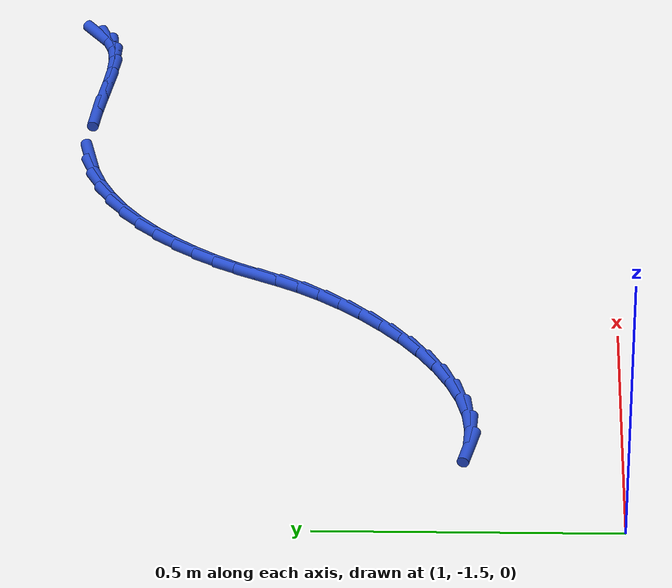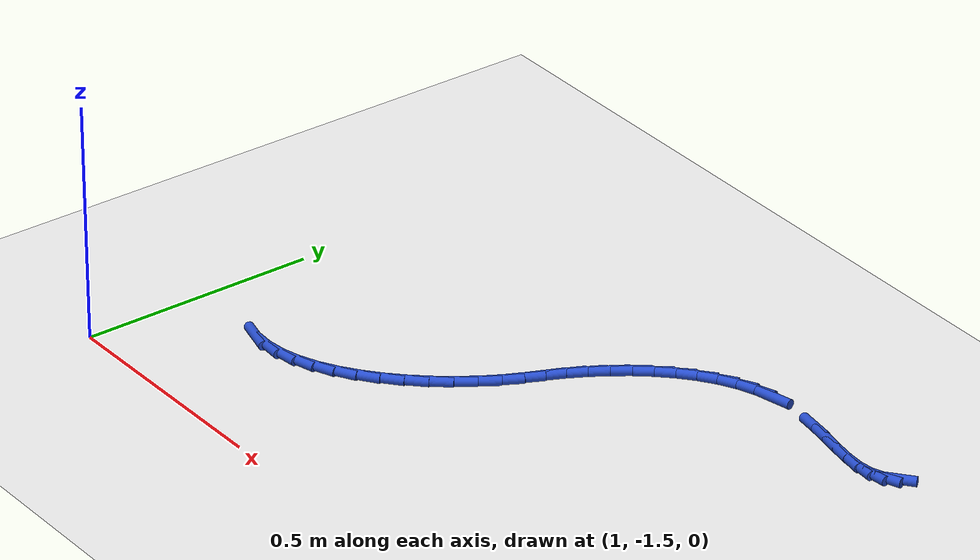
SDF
<sdf version="1.6">
 <world name="default">
  <model name="ground_plane">
   <static>1</static>
   <link name="link">
    <collision name="collision">
     <geometry><plane><normal>0 0 1</normal><size>100 100</size></plane></geometry>
     <surface><friction><ode><mu>100</mu><mu2>50</mu2></ode></friction></surface>
    </collision>
    <visual name="visual">
     <cast_shadows>0</cast_shadows>
     <geometry><plane><normal>0 0 1</normal><size>100 100</size></plane></geometry>
     <material>
      <script><uri>file://media/materials/scripts/gazebo.material</uri><name>Gazebo/WhiteGlow</name></script>
     </material>
    </visual>
   </link>
  </model>
  <model name="line">
   <link name="link_115">
    <pose>2.325679361298266 -0.6050712397060266 0.01 0 1.57 0.6688007633084342</pose>
    <collision name="collision">
     <geometry><cylinder><radius>0.01</radius><length>0.08</length></cylinder></geometry>
    </collision>
    <visual name="visual">
     <material>
      <script><name>Gazebo/Blue</name><uri>file://media/materials/scripts/gazebo.material</uri></script>
     </material>
     <geometry><cylinder><radius>0.01</radius><length>0.08</length></cylinder></geometry>
    </visual>
   </link>
   <link name="link_116">
    <pose>2.3060965718826636 -0.6205475978633173 0.01 0 1.57 0.3605797343999644</pose>
    <collision name="collision">
     <geometry><cylinder><radius>0.01</radius><length>0.08</length></cylinder></geometry>
    </collision>
    <visual name="visual">
     <material>
      <script><name>Gazebo/Blue</name><uri>file://media/materials/scripts/gazebo.material</uri></script>
     </material>
     <geometry><cylinder><radius>0.01</radius><length>0.08</length></cylinder></geometry>
    </visual>
   </link>
   <link name="link_117">
    <pose>2.2814037199699273 -0.6298584047814177 0.01 0 1.57 0.09516004184987245</pose>
    <collision name="collision">
     <geometry><cylinder><radius>0.01</radius><length>0.08</length></cylinder></geometry>
    </collision>
    <visual name="visual">
     <material>
      <script><name>Gazebo/Blue</name><uri>file://media/materials/scripts/gazebo.material</uri></script>
     </material>
     <geometry><cylinder><radius>0.01</radius><length>0.08</length></cylinder></geometry>
    </visual>
   </link>
   <link name="link_118">
    <pose>2.2514541678190825 -0.6327170393562563 0.01 0 1.57 -0.07018261444479298</pose>
    <collision name="collision">
     <geometry><cylinder><radius>0.01</radius><length>0.08</length></cylinder></geometry>
    </collision>
    <visual name="visual">
     <material>
      <script><name>Gazebo/Blue</name><uri>file://media/materials/scripts/gazebo.material</uri></script>
     </material>
     <geometry><cylinder><radius>0.01</radius><length>0.08</length></cylinder></geometry>
    </visual>
   </link>
   <link name="link_119">
    <pose>2.216894086478407 -0.6302875322556565 0.01 0 1.57 -0.15465796489176384</pose>
    <collision name="collision">
     <geometry><cylinder><radius>0.01</radius><length>0.08</length></cylinder></geometry>
    </collision>
    <visual name="visual">
     <material>
      <script><name>Gazebo/Blue</name><uri>file://media/materials/scripts/gazebo.material</uri></script>
     </material>
     <geometry><cylinder><radius>0.01</radius><length>0.08</length></cylinder></geometry>
    </visual>
   </link>
   <link name="link_120">
    <pose>2.178696761403713 -0.6243324558151565 0.01 0 1.57 -0.18664554628939434</pose>
    <collision name="collision">
     <geometry><cylinder><radius>0.01</radius><length>0.08</length></cylinder></geometry>
    </collision>
    <visual name="visual">
     <material>
      <script><name>Gazebo/Blue</name><uri>file://media/materials/scripts/gazebo.material</uri></script>
     </material>
     <geometry><cylinder><radius>0.01</radius><length>0.08</length></cylinder></geometry>
    </visual>
   </link>
   <link name="link_121">
    <pose>2.1378365042705143 -0.6166162601086016 0.01 0 1.57 -0.179323488355708</pose>
    <collision name="collision">
     <geometry><cylinder><radius>0.01</radius><length>0.08</length></cylinder></geometry>
    </collision>
    <visual name="visual">
     <material>
      <script><name>Gazebo/Blue</name><uri>file://media/materials/scripts/gazebo.material</uri></script>
     </material>
     <geometry><cylinder><radius>0.01</radius><length>0.08</length></cylinder></geometry>
    </visual>
   </link>
   <link name="link_122">
    <pose>2.0952876267543266 -0.608903395209837 0.01 0 1.57 -0.13656140122349472</pose>
    <collision name="collision">
     <geometry><cylinder><radius>0.01</radius><length>0.08</length></cylinder></geometry>
    </collision>
    <visual name="visual">
     <material>
      <script><name>Gazebo/Blue</name><uri>file://media/materials/scripts/gazebo.material</uri></script>
     </material>
     <geometry><cylinder><radius>0.01</radius><length>0.08</length></cylinder></geometry>
    </visual>
   </link>
   <link name="link_125">
    <pose>1.9672386401516684 -0.6033928339877523 0.01 0 1.57 0.2159750305147709</pose>
    <collision name="collision">
     <geometry><cylinder><radius>0.01</radius><length>0.08</length></cylinder></geometry>
    </collision>
    <visual name="visual">
     <material>
      <script><name>Gazebo/Blue</name><uri>file://media/materials/scripts/gazebo.material</uri></script>
     </material>
     <geometry><cylinder><radius>0.01</radius><length>0.08</length></cylinder></geometry>
    </visual>
   </link>
   <link name="link_126">
    <pose>1.927237550094516 -0.6121689514833518 0.01 0 1.57 0.3560681168944624</pose>
    <collision name="collision">
     <geometry><cylinder><radius>0.01</radius><length>0.08</length></cylinder></geometry>
    </collision>
    <visual name="visual">
     <material>
      <script><name>Gazebo/Blue</name><uri>file://media/materials/scripts/gazebo.material</uri></script>
     </material>
     <geometry><cylinder><radius>0.01</radius><length>0.08</length></cylinder></geometry>
    </visual>
   </link>
   <link name="link_127">
    <pose>1.8891266678387764 -0.6263431703813419 0.01 0 1.57 0.4835682094769274</pose>
    <collision name="collision">
     <geometry><cylinder><radius>0.01</radius><length>0.08</length></cylinder></geometry>
    </collision>
    <visual name="visual">
     <material>
      <script><name>Gazebo/Blue</name><uri>file://media/materials/scripts/gazebo.material</uri></script>
     </material>
     <geometry><cylinder><radius>0.01</radius><length>0.08</length></cylinder></geometry>
    </visual>
   </link>
   <link name="link_128">
    <pose>1.8529903393439 -0.6453203304455211 0.01 0 1.57 0.5974232199107794</pose>
    <collision name="collision">
     <geometry><cylinder><radius>0.01</radius><length>0.08</length></cylinder></geometry>
    </collision>
    <visual name="visual">
     <material>
      <script><name>Gazebo/Blue</name><uri>file://media/materials/scripts/gazebo.material</uri></script>
     </material>
     <geometry><cylinder><radius>0.01</radius><length>0.08</length></cylinder></geometry>
    </visual>
   </link>
   <link name="link_129">
    <pose>1.818912910569336 -0.6685052714396873 0.01 0 1.57 0.6981611096720861</pose>
    <collision name="collision">
     <geometry><cylinder><radius>0.01</radius><length>0.08</length></cylinder></geometry>
    </collision>
    <visual name="visual">
     <material>
      <script><name>Gazebo/Blue</name><uri>file://media/materials/scripts/gazebo.material</uri></script>
     </material>
     <geometry><cylinder><radius>0.01</radius><length>0.08</length></cylinder></geometry>
    </visual>
   </link>
   <link name="link_130">
    <pose>1.786978727474534 -0.6953028331276387 0.01 0 1.57 0.7872198641787151</pose>
    <collision name="collision">
     <geometry><cylinder><radius>0.01</radius><length>0.08</length></cylinder></geometry>
    </collision>
    <visual name="visual">
     <material>
      <script><name>Gazebo/Blue</name><uri>file://media/materials/scripts/gazebo.material</uri></script>
     </material>
     <geometry><cylinder><radius>0.01</radius><length>0.08</length></cylinder></geometry>
    </visual>
   </link>
   <link name="link_131">
    <pose>1.7572721360189445 -0.7251178552731734 0.01 0 1.57 0.8664296004696156</pose>
    <collision name="collision">
     <geometry><cylinder><radius>0.01</radius><length>0.08</length></cylinder></geometry>
    </collision>
    <visual name="visual">
     <material>
      <script><name>Gazebo/Blue</name><uri>file://media/materials/scripts/gazebo.material</uri></script>
     </material>
     <geometry><cylinder><radius>0.01</radius><length>0.08</length></cylinder></geometry>
    </visual>
   </link>
   <link name="link_132">
    <pose>1.7298774821620158 -0.7573551776400893 0.01 0 1.57 0.937708451223789</pose>
    <collision name="collision">
     <geometry><cylinder><radius>0.01</radius><length>0.08</length></cylinder></geometry>
    </collision>
    <visual name="visual">
     <material>
      <script><name>Gazebo/Blue</name><uri>file://media/materials/scripts/gazebo.material</uri></script>
     </material>
     <geometry><cylinder><radius>0.01</radius><length>0.08</length></cylinder></geometry>
    </visual>
   </link>
   <link name="link_133">
    <pose>1.7048791118631978 -0.7914196399921846 0.01 0 1.57 1.0029312407927482</pose>
    <collision name="collision">
     <geometry><cylinder><radius>0.01</radius><length>0.08</length></cylinder></geometry>
    </collision>
    <visual name="visual">
     <material>
      <script><name>Gazebo/Blue</name><uri>file://media/materials/scripts/gazebo.material</uri></script>
     </material>
     <geometry><cylinder><radius>0.01</radius><length>0.08</length></cylinder></geometry>
    </visual>
   </link>
   <link name="link_134">
    <pose>1.6823613710819414 -0.8267160820932578 0.01 0 1.57 1.0639138627711475</pose>
    <collision name="collision">
     <geometry><cylinder><radius>0.01</radius><length>0.08</length></cylinder></geometry>
    </collision>
    <visual name="visual">
     <material>
      <script><name>Gazebo/Blue</name><uri>file://media/materials/scripts/gazebo.material</uri></script>
     </material>
     <geometry><cylinder><radius>0.01</radius><length>0.08</length></cylinder></geometry>
    </visual>
   </link>
   <link name="link_135">
    <pose>1.6624086057776954 -0.8626493437071061 0.01 0 1.57 1.1219030060871378</pose>
    <collision name="collision">
     <geometry><cylinder><radius>0.01</radius><length>0.08</length></cylinder></geometry>
    </collision>
    <visual name="visual">
     <material>
      <script><name>Gazebo/Blue</name><uri>file://media/materials/scripts/gazebo.material</uri></script>
     </material>
     <geometry><cylinder><radius>0.01</radius><length>0.08</length></cylinder></geometry>
    </visual>
   </link>
   <link name="link_136">
    <pose>1.6450747837362816 -0.898634708509984 0.01 0 1.57 1.150879170627681</pose>
    <collision name="collision">
     <geometry><cylinder><radius>0.01</radius><length>0.08</length></cylinder></geometry>
    </collision>
    <visual name="visual">
     <material>
      <script><name>Gazebo/Blue</name><uri>file://media/materials/scripts/gazebo.material</uri></script>
     </material>
     <geometry><cylinder><radius>0.01</radius><length>0.08</length></cylinder></geometry>
    </visual>
   </link>
   <link name="link_137">
    <pose>1.629034325928448 -0.9345617436667304 0.01 0 1.57 1.1128278291512077</pose>
    <collision name="collision">
     <geometry><cylinder><radius>0.01</radius><length>0.08</length></cylinder></geometry>
    </collision>
    <visual name="visual">
     <material>
      <script><name>Gazebo/Blue</name><uri>file://media/materials/scripts/gazebo.material</uri></script>
     </material>
     <geometry><cylinder><radius>0.01</radius><length>0.08</length></cylinder></geometry>
    </visual>
   </link>
   <link name="link_138">
    <pose>1.6110914479125027 -0.9709628567913532 0.01 0 1.57 1.0414487218423394</pose>
    <collision name="collision">
     <geometry><cylinder><radius>0.01</radius><length>0.08</length></cylinder></geometry>
    </collision>
    <visual name="visual">
     <material>
      <script><name>Gazebo/Blue</name><uri>file://media/materials/scripts/gazebo.material</uri></script>
     </material>
     <geometry><cylinder><radius>0.01</radius><length>0.08</length></cylinder></geometry>
    </visual>
   </link>
   <link name="link_139">
    <pose>1.589500833811164 -1.0078673038680717 0.01 0 1.57 0.9730861094268497</pose>
    <collision name="collision">
     <geometry><cylinder><radius>0.01</radius><length>0.08</length></cylinder></geometry>
    </collision>
    <visual name="visual">
     <material>
      <script><name>Gazebo/Blue</name><uri>file://media/materials/scripts/gazebo.material</uri></script>
     </material>
     <geometry><cylinder><radius>0.01</radius><length>0.08</length></cylinder></geometry>
    </visual>
   </link>
   <link name="link_140">
    <pose>1.5644768496632222 -1.0446250869261735 0.01 0 1.57 0.9065499853327028</pose>
    <collision name="collision">
     <geometry><cylinder><radius>0.01</radius><length>0.08</length></cylinder></geometry>
    </collision>
    <visual name="visual">
     <material>
      <script><name>Gazebo/Blue</name><uri>file://media/materials/scripts/gazebo.material</uri></script>
     </material>
     <geometry><cylinder><radius>0.01</radius><length>0.08</length></cylinder></geometry>
    </visual>
   </link>
   <link name="link_141">
    <pose>1.5363544896405654 -1.080544396547995 0.01 0 1.57 0.8390165406970017</pose>
    <collision name="collision">
     <geometry><cylinder><radius>0.01</radius><length>0.08</length></cylinder></geometry>
    </collision>
    <visual name="visual">
     <material>
      <script><name>Gazebo/Blue</name><uri>file://media/materials/scripts/gazebo.material</uri></script>
     </material>
     <geometry><cylinder><radius>0.01</radius><length>0.08</length></cylinder></geometry>
    </visual>
   </link>
   <link name="link_142">
    <pose>1.5054687479150755 -1.1149334233158714 0.01 0 1.57 0.7678804667444641</pose>
    <collision name="collision">
     <geometry><cylinder><radius>0.01</radius><length>0.08</length></cylinder></geometry>
    </collision>
    <visual name="visual">
     <material>
      <script><name>Gazebo/Blue</name><uri>file://media/materials/scripts/gazebo.material</uri></script>
     </material>
     <geometry><cylinder><radius>0.01</radius><length>0.08</length></cylinder></geometry>
    </visual>
   </link>
   <link name="link_143">
    <pose>1.4721546186586378 -1.147100357812138 0.01 0 1.57 0.6905025262062975</pose>
    <collision name="collision">
     <geometry><cylinder><radius>0.01</radius><length>0.08</length></cylinder></geometry>
    </collision>
    <visual name="visual">
     <material>
      <script><name>Gazebo/Blue</name><uri>file://media/materials/scripts/gazebo.material</uri></script>
     </material>
     <geometry><cylinder><radius>0.01</radius><length>0.08</length></cylinder></geometry>
    </visual>
   </link>
   <link name="link_144">
    <pose>1.4367470960431377 -1.1763533906191297 0.01 0 1.57 0.6040346647854921</pose>
    <collision name="collision">
     <geometry><cylinder><radius>0.01</radius><length>0.08</length></cylinder></geometry>
    </collision>
    <visual name="visual">
     <material>
      <script><name>Gazebo/Blue</name><uri>file://media/materials/scripts/gazebo.material</uri></script>
     </material>
     <geometry><cylinder><radius>0.01</radius><length>0.08</length></cylinder></geometry>
    </visual>
   </link>
   <link name="link_145">
    <pose>1.3995811742404596 -1.2020007123191823 0.01 0 1.57 0.5053400691861752</pose>
    <collision name="collision">
     <geometry><cylinder><radius>0.01</radius><length>0.08</length></cylinder></geometry>
    </collision>
    <visual name="visual">
     <material>
      <script><name>Gazebo/Blue</name><uri>file://media/materials/scripts/gazebo.material</uri></script>
     </material>
     <geometry><cylinder><radius>0.01</radius><length>0.08</length></cylinder></geometry>
    </visual>
   </link>
   <link name="link_146">
    <pose>1.3609918474224882 -1.2233505134946308 0.01 0 1.57 0.39109351453584934</pose>
    <collision name="collision">
     <geometry><cylinder><radius>0.01</radius><length>0.08</length></cylinder></geometry>
    </collision>
    <visual name="visual">
     <material>
      <script><name>Gazebo/Blue</name><uri>file://media/materials/scripts/gazebo.material</uri></script>
     </material>
     <geometry><cylinder><radius>0.01</radius><length>0.08</length></cylinder></geometry>
    </visual>
   </link>
   <link name="link_147">
    <pose>1.3213141097611087 -1.2397109847278103 0.01 0 1.57 0.2582384473872084</pose>
    <collision name="collision">
     <geometry><cylinder><radius>0.01</radius><length>0.08</length></cylinder></geometry>
    </collision>
    <visual name="visual">
     <material>
      <script><name>Gazebo/Blue</name><uri>file://media/materials/scripts/gazebo.material</uri></script>
     </material>
     <geometry><cylinder><radius>0.01</radius><length>0.08</length></cylinder></geometry>
    </visual>
   </link>
   <link name="link_148">
    <pose>1.2808829554282053 -1.2503903166010557 0.01 0 1.57 0.10503256079556249</pose>
    <collision name="collision">
     <geometry><cylinder><radius>0.01</radius><length>0.08</length></cylinder></geometry>
    </collision>
    <visual name="visual">
     <material>
      <script><name>Gazebo/Blue</name><uri>file://media/materials/scripts/gazebo.material</uri></script>
     </material>
     <geometry><cylinder><radius>0.01</radius><length>0.08</length></cylinder></geometry>
    </visual>
   </link>
   <link name="link_149">
    <pose>1.2400333785956632 -1.2546966996967035 0.01 0 1.57 -0.06728582697844027</pose>
    <collision name="collision">
     <geometry><cylinder><radius>0.01</radius><length>0.08</length></cylinder></geometry>
    </collision>
    <visual name="visual">
     <material>
      <script><name>Gazebo/Blue</name><uri>file://media/materials/scripts/gazebo.material</uri></script>
     </material>
     <geometry><cylinder><radius>0.01</radius><length>0.08</length></cylinder></geometry>
    </visual>
   </link>
   <link name="link_150">
    <pose>1.199100373435367 -1.2519383245970879 0.01 0 1.57 -0.2529346599119208</pose>
    <collision name="collision">
     <geometry><cylinder><radius>0.01</radius><length>0.08</length></cylinder></geometry>
    </collision>
    <visual name="visual">
     <material>
      <script><name>Gazebo/Blue</name><uri>file://media/materials/scripts/gazebo.material</uri></script>
     </material>
     <geometry><cylinder><radius>0.01</radius><length>0.08</length></cylinder></geometry>
    </visual>
   </link>
  </model>
 </world>
</sdf>
